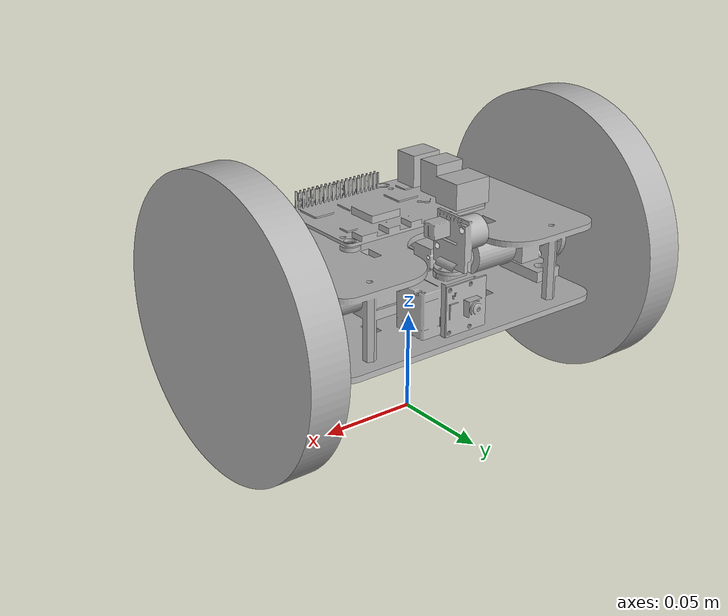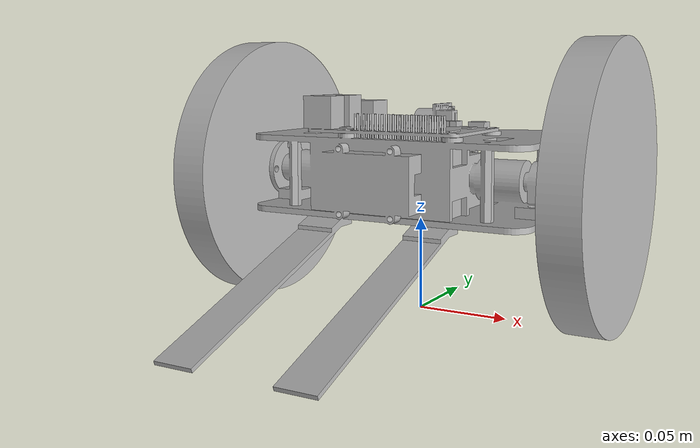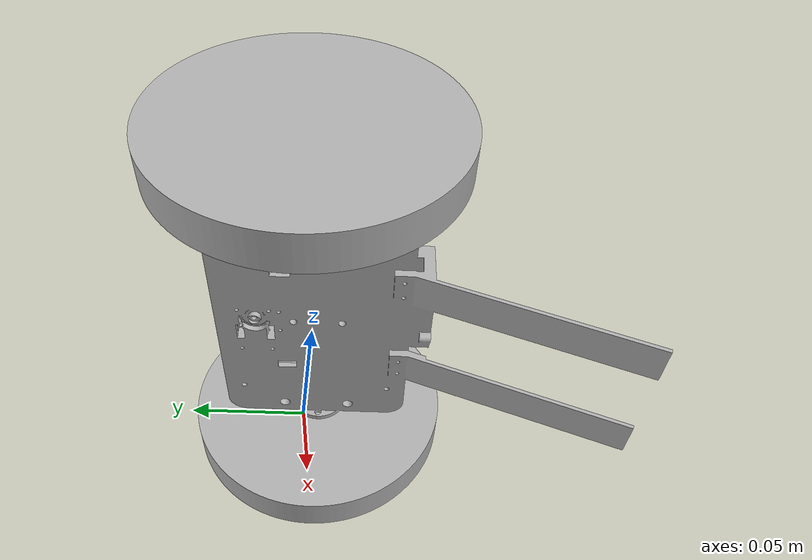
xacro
<?xml version="1.0" ?>
<robot name="ForROS" xmlns:xacro="http://www.ros.org/wiki/xacro">

<xacro:include filename="$(find ForROS_description)/urdf/materials.xacro" />
<xacro:include filename="$(find ForROS_description)/urdf/ForROS.trans" />
<xacro:include filename="$(find ForROS_description)/urdf/ForROS.gazebo" />
<link name="base_link">
  <inertial>
    <origin xyz="0.0004911783006626312 -0.009780351666287029 0.07183129641241766" rpy="0 0 0"/>
    <mass value="0.25016474153306034"/>
    <inertia ixx="0.000333" iyy="0.000517" izz="0.000726" ixy="-5e-06" iyz="-4e-05" ixz="-0.0"/>
  </inertial>
  <visual>
    <origin xyz="0 0 0" rpy="0 0 0"/>
    <geometry>
      <mesh filename="file://$(find ForROS_description)/meshes/base_link.stl" scale="0.001 0.001 0.001"/>
    </geometry>
    <material name="silver"/>
  </visual>
  <collision>
    <origin xyz="0 0 0" rpy="0 0 0"/>
    <geometry>
      <mesh filename="file://$(find ForROS_description)/meshes/base_link.stl" scale="0.001 0.001 0.001"/>
    </geometry>
  </collision>
</link>

<link name="RaspberryPi_1">
  <inertial>
    <origin xyz="0.0005499466510293753 -0.02398889357961427 0.005680415420320897" rpy="0 0 0"/>
    <mass value="0.16657879817354218"/>
    <inertia ixx="4.7e-05" iyy="0.000108" izz="0.000146" ixy="-2e-06" iyz="1e-06" ixz="1.2e-05"/>
  </inertial>
  <visual>
    <origin xyz="0.019 -0.0045 -0.09885" rpy="0 0 0"/>
    <geometry>
      <mesh filename="file://$(find ForROS_description)/meshes/RaspberryPi_1.stl" scale="0.001 0.001 0.001"/>
    </geometry>
    <material name="silver"/>
  </visual>
  <collision>
    <origin xyz="0.019 -0.0045 -0.09885" rpy="0 0 0"/>
    <geometry>
      <mesh filename="file://$(find ForROS_description)/meshes/RaspberryPi_1.stl" scale="0.001 0.001 0.001"/>
    </geometry>
  </collision>
</link>

<link name="Camera_1">
  <inertial>
    <origin xyz="-0.01234464717368007 0.0007909573025064176 -0.010732269549067155" rpy="0 0 0"/>
    <mass value="0.009739005858820688"/>
    <inertia ixx="0.0" iyy="1e-06" izz="0.0" ixy="-0.0" iyz="-0.0" ixz="0.0"/>
  </inertial>
  <visual>
    <origin xyz="-0.01243 -0.043715 -0.08237" rpy="0 0 0"/>
    <geometry>
      <mesh filename="file://$(find ForROS_description)/meshes/Camera_1.stl" scale="0.001 0.001 0.001"/>
    </geometry>
    <material name="silver"/>
  </visual>
  <collision>
    <origin xyz="-0.01243 -0.043715 -0.08237" rpy="0 0 0"/>
    <geometry>
      <mesh filename="file://$(find ForROS_description)/meshes/Camera_1.stl" scale="0.001 0.001 0.001"/>
    </geometry>
  </collision>
</link>

<link name="Battery_v1_1_1">
  <inertial>
    <origin xyz="-0.036499999999999894 -6.938893903907228e-18 0.0" rpy="0 0 0"/>
    <mass value="0.34096475"/>
    <inertia ixx="4.3e-05" iyy="0.000186" izz="0.00016" ixy="-0.0" iyz="-0.0" ixz="-0.0"/>
  </inertial>
  <visual>
    <origin xyz="-0.0365 0.037 -0.07615" rpy="0 0 0"/>
    <geometry>
      <mesh filename="file://$(find ForROS_description)/meshes/Battery_v1_1_1.stl" scale="0.001 0.001 0.001"/>
    </geometry>
    <material name="silver"/>
  </visual>
  <collision>
    <origin xyz="-0.0365 0.037 -0.07615" rpy="0 0 0"/>
    <geometry>
      <mesh filename="file://$(find ForROS_description)/meshes/Battery_v1_1_1.stl" scale="0.001 0.001 0.001"/>
    </geometry>
  </collision>
</link>

<link name="Lidar_1">
  <inertial>
    <origin xyz="-0.005110778358159231 -0.0003774520654865679 0.014726243086830515" rpy="0 0 0"/>
    <mass value="0.0410253525704472"/>
    <inertia ixx="3e-06" iyy="3e-06" izz="3e-06" ixy="0.0" iyz="0.0" ixz="0.0"/>
  </inertial>
  <visual>
    <origin xyz="-0.0 -0.03 -0.08445" rpy="0 0 0"/>
    <geometry>
      <mesh filename="file://$(find ForROS_description)/meshes/Lidar_1.stl" scale="0.001 0.001 0.001"/>
    </geometry>
    <material name="silver"/>
  </visual>
  <collision>
    <origin xyz="-0.0 -0.03 -0.08445" rpy="0 0 0"/>
    <geometry>
      <mesh filename="file://$(find ForROS_description)/meshes/Lidar_1.stl" scale="0.001 0.001 0.001"/>
    </geometry>
  </collision>
</link>

<link name="Wheel_Right_1">
  <inertial>
    <origin xyz="0.00999999904632605 -4.0829913766993514e-16 -7.494005416219807e-16" rpy="0 0 0"/>
    <mass value="2.628422918403861"/>
    <inertia ixx="0.007003" iyy="0.003589" izz="0.003589" ixy="-0.0" iyz="0.0" ixz="-0.0"/>
  </inertial>
  <visual>
    <origin xyz="-0.0902 0.0 -0.07365" rpy="0 0 0"/>
    <geometry>
      <mesh filename="file://$(find ForROS_description)/meshes/Wheel_Right_1.stl" scale="0.001 0.001 0.001"/>
    </geometry>
    <material name="silver"/>
  </visual>
  <collision>
    <origin xyz="-0.0902 0.0 -0.07365" rpy="0 0 0"/>
    <geometry>
      <mesh filename="file://$(find ForROS_description)/meshes/Wheel_Right_1.stl" scale="0.001 0.001 0.001"/>
    </geometry>
  </collision>
</link>

<link name="Wheel_Left_1">
  <inertial>
    <origin xyz="-0.009999999046325717 -2.4446522753376495e-16 -4.579669976578771e-16" rpy="0 0 0"/>
    <mass value="2.628422918403913"/>
    <inertia ixx="0.007003" iyy="0.003589" izz="0.003589" ixy="-0.0" iyz="0.0" ixz="-0.0"/>
  </inertial>
  <visual>
    <origin xyz="0.0902 -0.0 -0.07365" rpy="0 0 0"/>
    <geometry>
      <mesh filename="file://$(find ForROS_description)/meshes/Wheel_Left_1.stl" scale="0.001 0.001 0.001"/>
    </geometry>
    <material name="silver"/>
  </visual>
  <collision>
    <origin xyz="0.0902 -0.0 -0.07365" rpy="0 0 0"/>
    <geometry>
      <mesh filename="file://$(find ForROS_description)/meshes/Wheel_Left_1.stl" scale="0.001 0.001 0.001"/>
    </geometry>
  </collision>
</link>

<joint name="Rigid_Pi" type="fixed">
  <origin xyz="-0.019 0.0045 0.09885" rpy="0 0 0"/>
  <parent link="base_link"/>
  <child link="RaspberryPi_1"/>
</joint>

<joint name="Rigid_Camera" type="fixed">
  <origin xyz="0.01243 0.043715 0.08237" rpy="0 0 0"/>
  <parent link="base_link"/>
  <child link="Camera_1"/>
</joint>

<joint name="Rigid_Battery" type="fixed">
  <origin xyz="0.0365 -0.037 0.07615" rpy="0 0 0"/>
  <parent link="base_link"/>
  <child link="Battery_v1_1_1"/>
</joint>

<joint name="Revolute_Camera" type="continuous">
  <origin xyz="0.0 0.03 0.08445" rpy="0 0 0"/>
  <parent link="base_link"/>
  <child link="Lidar_1"/>
  <axis xyz="0.0 -0.0 -1.0"/>
</joint>

<joint name="Revolute_Right" type="continuous">
  <origin xyz="0.0902 0.0 0.07365" rpy="0 0 0"/>
  <parent link="base_link"/>
  <child link="Wheel_Right_1"/>
  <axis xyz="1.0 -0.0 -0.0"/>
</joint>

<joint name="Revolute_Left" type="continuous">
  <origin xyz="-0.0902 0.0 0.07365" rpy="0 0 0"/>
  <parent link="base_link"/>
  <child link="Wheel_Left_1"/>
  <axis xyz="-1.0 0.0 0.0"/>
</joint>

</robot>

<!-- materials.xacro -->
<robot name="ForROS" xmlns:xacro="http://www.ros.org/wiki/xacro" >

<material name="silver">
  <color rgba="0.700 0.700 0.700 1.000"/>
</material>

</robot>

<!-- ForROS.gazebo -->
<robot name="ForROS" xmlns:xacro="http://www.ros.org/wiki/xacro" >

<xacro:property name="body_color" value="Gazebo/Silver" />

<gazebo>
  <plugin name="control" filename="libgazebo_ros_control.so"/>
</gazebo>
<gazebo reference="base_link">
  <material>${body_color}</material>
  <mu1>0.2</mu1>
  <mu2>0.2</mu2>
  <self_collide>true</self_collide>
  <gravity>true</gravity>
</gazebo>

<gazebo reference="RaspberryPi_1">
  <material>${body_color}</material>
  <mu1>0.2</mu1>
  <mu2>0.2</mu2>
  <self_collide>true</self_collide>
</gazebo>

<gazebo reference="Camera_1">
  <material>${body_color}</material>
  <mu1>0.2</mu1>
  <mu2>0.2</mu2>
  <self_collide>true</self_collide>
</gazebo>

<gazebo reference="Battery_v1_1_1">
  <material>${body_color}</material>
  <mu1>0.2</mu1>
  <mu2>0.2</mu2>
  <self_collide>true</self_collide>
</gazebo>

<gazebo reference="Lidar_1">
  <material>${body_color}</material>
  <mu1>0.2</mu1>
  <mu2>0.2</mu2>
  <self_collide>true</self_collide>
</gazebo>

<gazebo reference="Wheel_Right_1">
  <material>${body_color}</material>
  <mu1>0.2</mu1>
  <mu2>0.2</mu2>
  <self_collide>true</self_collide>
</gazebo>

<gazebo reference="Wheel_Left_1">
  <material>${body_color}</material>
  <mu1>0.2</mu1>
  <mu2>0.2</mu2>
  <self_collide>true</self_collide>
</gazebo>

</robot>
